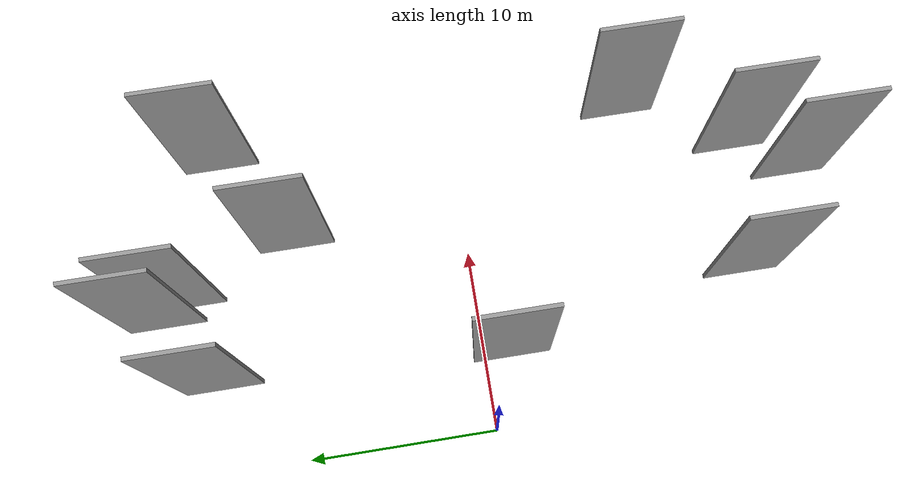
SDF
<sdf version="1.6">
 <world name="default">
  <scene>
   <sky><clouds><speed>12</speed></clouds></sky>
   <ambient>0.4 0.4 0.4 1</ambient>
   <background>0.7 0.7 0.7 1</background>
   <shadows>1</shadows>
  </scene>
  <gravity>0 0 -9.8066</gravity>
  <magnetic_field>6e-06 2.3e-05 -4.2e-05</magnetic_field>
  <physics default="0" name="default_physics" type="ode">
   <ode>
    <solver>
     <type>quick</type>
     <iters>10</iters>
     <sor>1.0</sor>
     <use_dynamic_moi_rescaling>0</use_dynamic_moi_rescaling>
    </solver>
    <constraints>
     <cfm>0</cfm>
     <erp>0.2</erp>
     <contact_max_correcting_vel>100</contact_max_correcting_vel>
     <contact_surface_layer>0.001</contact_surface_layer>
    </constraints>
   </ode>
   <max_step_size>0.004</max_step_size>
   <real_time_factor>1</real_time_factor>
   <real_time_update_rate>250</real_time_update_rate>
  </physics>
  <light name="sun" type="directional">
   <pose>0 0 10 0 0 0</pose>
   <diffuse>0.8 0.8 0.8 1</diffuse>
   <specular>0.2 0.2 0.2 1</specular>
   <attenuation>
    <range>1000</range>
    <constant>0.9</constant>
    <linear>0.01</linear>
    <quadratic>0.001</quadratic>
   </attenuation>
   <direction>-0.5 0.1 -0.9</direction>
  </light>
  <model name="grey_wall_1">
   <static>1</static>
   <pose>16.3554 12.6611 2.5 0.000000 0.000000 1.570796</pose>
   <link name="link">
    <pose>0 0 5.00 0 0 0</pose>
    <collision name="collision"><geometry><box><size>4.00 0.2 10.00</size></box></geometry></collision>
    <visual name="visual">
     <cast_shadows>0</cast_shadows>
     <geometry><box><size>4.00 0.2 10.00</size></box></geometry>
     <material>
      <script>
       <uri>model://grey_wall/materials/scripts</uri>
       <uri>model://grey_wall/materials/textures</uri>
       <name>vrc/grey_wall</name>
      </script>
     </material>
    </visual>
   </link>
  </model>
  <model name="grey_wall_2">
   <static>1</static>
   <pose>13.0809 -15.1183 2.5 0.000000 0.000000 1.570796</pose>
   <link name="link">
    <pose>0 0 5.00 0 0 0</pose>
    <collision name="collision"><geometry><box><size>4.00 0.2 10.00</size></box></geometry></collision>
    <visual name="visual">
     <cast_shadows>0</cast_shadows>
     <geometry><box><size>4.00 0.2 10.00</size></box></geometry>
     <material>
      <script>
       <uri>model://grey_wall/materials/scripts</uri>
       <uri>model://grey_wall/materials/textures</uri>
       <name>vrc/grey_wall</name>
      </script>
     </material>
    </visual>
   </link>
  </model>
  <model name="grey_wall_3">
   <static>1</static>
   <pose>4.1614 13.5649 2.5 0.000000 0.000000 1.570796</pose>
   <link name="link">
    <pose>0 0 5.00 0 0 0</pose>
    <collision name="collision"><geometry><box><size>4.00 0.2 10.00</size></box></geometry></collision>
    <visual name="visual">
     <cast_shadows>0</cast_shadows>
     <geometry><box><size>4.00 0.2 10.00</size></box></geometry>
     <material>
      <script>
       <uri>model://grey_wall/materials/scripts</uri>
       <uri>model://grey_wall/materials/textures</uri>
       <name>vrc/grey_wall</name>
      </script>
     </material>
    </visual>
   </link>
  </model>
  <model name="grey_wall_4">
   <static>1</static>
   <pose>7.9077 16.2255 2.5 0.000000 0.000000 1.570796</pose>
   <link name="link">
    <pose>0 0 5.00 0 0 0</pose>
    <collision name="collision"><geometry><box><size>4.00 0.2 10.00</size></box></geometry></collision>
    <visual name="visual">
     <cast_shadows>0</cast_shadows>
     <geometry><box><size>4.00 0.2 10.00</size></box></geometry>
     <material>
      <script>
       <uri>model://grey_wall/materials/scripts</uri>
       <uri>model://grey_wall/materials/textures</uri>
       <name>vrc/grey_wall</name>
      </script>
     </material>
    </visual>
   </link>
  </model>
  <model name="grey_wall_5">
   <static>1</static>
   <pose>11.0905 -17.9565 2.5 0.000000 0.000000 1.570796</pose>
   <link name="link">
    <pose>0 0 5.00 0 0 0</pose>
    <collision name="collision"><geometry><box><size>4.00 0.2 10.00</size></box></geometry></collision>
    <visual name="visual">
     <cast_shadows>0</cast_shadows>
     <geometry><box><size>4.00 0.2 10.00</size></box></geometry>
     <material>
      <script>
       <uri>model://grey_wall/materials/scripts</uri>
       <uri>model://grey_wall/materials/textures</uri>
       <name>vrc/grey_wall</name>
      </script>
     </material>
    </visual>
   </link>
  </model>
  <model name="grey_wall_6">
   <static>1</static>
   <pose>6.0192 -14.1326 2.5 0.000000 0.000000 1.570796</pose>
   <link name="link">
    <pose>0 0 5.00 0 0 0</pose>
    <collision name="collision"><geometry><box><size>4.00 0.2 10.00</size></box></geometry></collision>
    <visual name="visual">
     <cast_shadows>0</cast_shadows>
     <geometry><box><size>4.00 0.2 10.00</size></box></geometry>
     <material>
      <script>
       <uri>model://grey_wall/materials/scripts</uri>
       <uri>model://grey_wall/materials/textures</uri>
       <name>vrc/grey_wall</name>
      </script>
     </material>
    </visual>
   </link>
  </model>
  <model name="grey_wall_7">
   <static>1</static>
   <pose>8.8282 15.1023 2.5 0.000000 0.000000 1.570796</pose>
   <link name="link">
    <pose>0 0 5.00 0 0 0</pose>
    <collision name="collision"><geometry><box><size>4.00 0.2 10.00</size></box></geometry></collision>
    <visual name="visual">
     <cast_shadows>0</cast_shadows>
     <geometry><box><size>4.00 0.2 10.00</size></box></geometry>
     <material>
      <script>
       <uri>model://grey_wall/materials/scripts</uri>
       <uri>model://grey_wall/materials/textures</uri>
       <name>vrc/grey_wall</name>
      </script>
     </material>
    </visual>
   </link>
  </model>
  <model name="grey_wall_8">
   <static>1</static>
   <pose>16.1017 -9.3857 2.5 0.000000 0.000000 1.570796</pose>
   <link name="link">
    <pose>0 0 5.00 0 0 0</pose>
    <collision name="collision"><geometry><box><size>4.00 0.2 10.00</size></box></geometry></collision>
    <visual name="visual">
     <cast_shadows>0</cast_shadows>
     <geometry><box><size>4.00 0.2 10.00</size></box></geometry>
     <material>
      <script>
       <uri>model://grey_wall/materials/scripts</uri>
       <uri>model://grey_wall/materials/textures</uri>
       <name>vrc/grey_wall</name>
      </script>
     </material>
    </visual>
   </link>
  </model>
  <model name="grey_wall_9">
   <static>1</static>
   <pose>3.4995 -1.3413 2.5 0.000000 0.000000 1.570796</pose>
   <link name="link">
    <pose>0 0 5.00 0 0 0</pose>
    <collision name="collision"><geometry><box><size>4.00 0.2 10.00</size></box></geometry></collision>
    <visual name="visual">
     <cast_shadows>0</cast_shadows>
     <geometry><box><size>4.00 0.2 10.00</size></box></geometry>
     <material>
      <script>
       <uri>model://grey_wall/materials/scripts</uri>
       <uri>model://grey_wall/materials/textures</uri>
       <name>vrc/grey_wall</name>
      </script>
     </material>
    </visual>
   </link>
  </model>
  <model name="grey_wall_10">
   <static>1</static>
   <pose>11.1813 9.0697 2.5 0.000000 0.000000 1.570796</pose>
   <link name="link">
    <pose>0 0 5.00 0 0 0</pose>
    <collision name="collision"><geometry><box><size>4.00 0.2 10.00</size></box></geometry></collision>
    <visual name="visual">
     <cast_shadows>0</cast_shadows>
     <geometry><box><size>4.00 0.2 10.00</size></box></geometry>
     <material>
      <script>
       <uri>model://grey_wall/materials/scripts</uri>
       <uri>model://grey_wall/materials/textures</uri>
       <name>vrc/grey_wall</name>
      </script>
     </material>
    </visual>
   </link>
  </model>
 </world>
</sdf>
